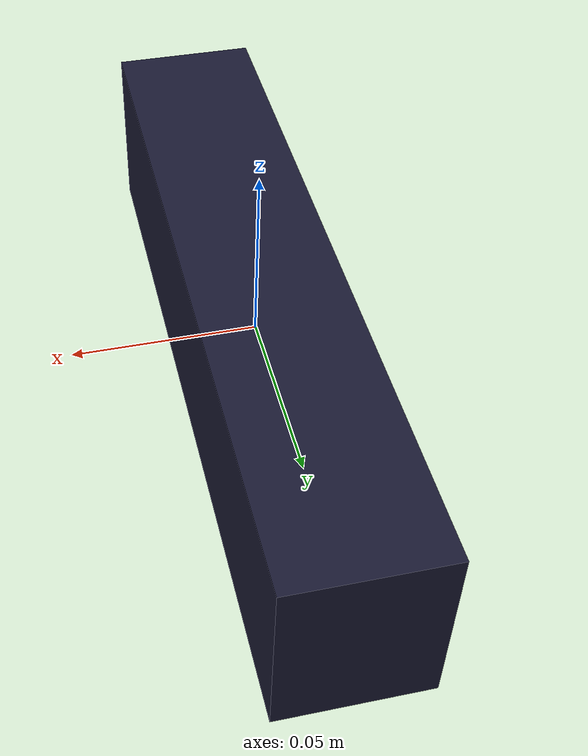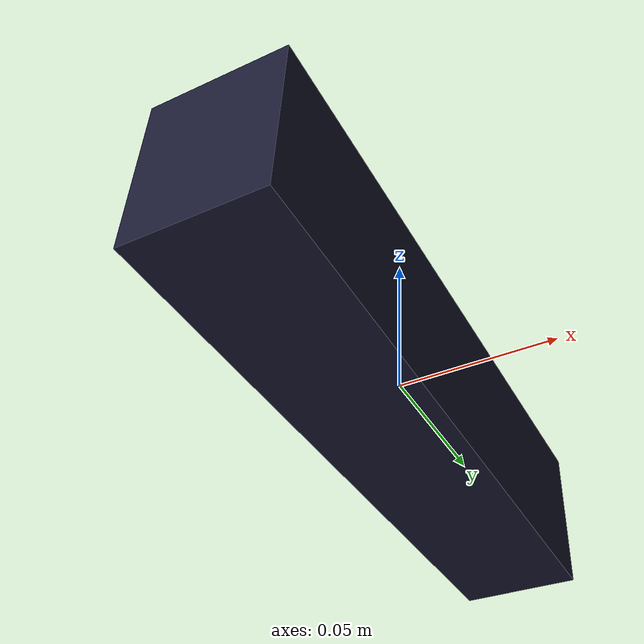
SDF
<?xml version="1.0" ?>
<sdf version="1.4">

<physics type="ode">

      <ode>

        <constraints>
          <contact_max_correcting_vel>0.1</contact_max_correcting_vel>
          <contact_surface_layer>0.0001</contact_surface_layer>
        </constraints>
      	</ode>
	<max_contacts>10</max_contacts>
	</physics>

	<model name="brick">

		<link name="link">

		   <inertial>
			<mass>4.0</mass>
			<inertia> <!-- inertias are tricky to compute -->
			  <!-- http://gazebosim.org/tutorials?tut=inertia&cat=build_robot -->
			  <ixx>0.083</ixx>       <!-- for a box: ixx = 0.083 * mass * (y*y + z*z) -->
			  <ixy>0.0</ixy>         <!-- for a box: ixy = 0 -->
			  <ixz>0.0</ixz>         <!-- for a box: ixz = 0 -->
			  <iyy>0.083</iyy>       <!-- for a box: iyy = 0.083 * mass * (x*x + z*z) -->
			  <iyz>0.0</iyz>         <!-- for a box: iyz = 0 -->
			  <izz>0.083</izz>       <!-- for a box: izz = 0.083 * mass * (x*x + y*y) -->
			</inertia>
		      </inertial>
		      <collision name="collision">
			<geometry>
			  <box>
			    <size>0.04 0.2 0.05</size>
			  </box>
			</geometry>
		      </collision>

		      <visual name="visual">

 			<material>
			  <ambient>0.1 0.1 0.1 1</ambient>
			  <diffuse>0.1 0.1 0.2 1</diffuse>
			  <specular>0 0 0 0</specular>
			  <emissive>0 0 0 1</emissive>
			</material>

			<geometry>
			  <box>
			    <size>0.04 0.2 0.05</size>
			  </box>
			</geometry>
		      </visual>

			<mu1>10</mu1>
			    <mu2>10</mu2>

			    <kp>100000.0</kp>
			    <kd>10.0</kd>
			    <fdir1>0 0 1</fdir1>
			    <minDepth>0.001</minDepth>
			    <maxVel>0.0</maxVel>
			    <maxContacts>2</maxContacts>
			    <material>Gazebo/RedBright</material>

		</link>
	</model>
</sdf>
